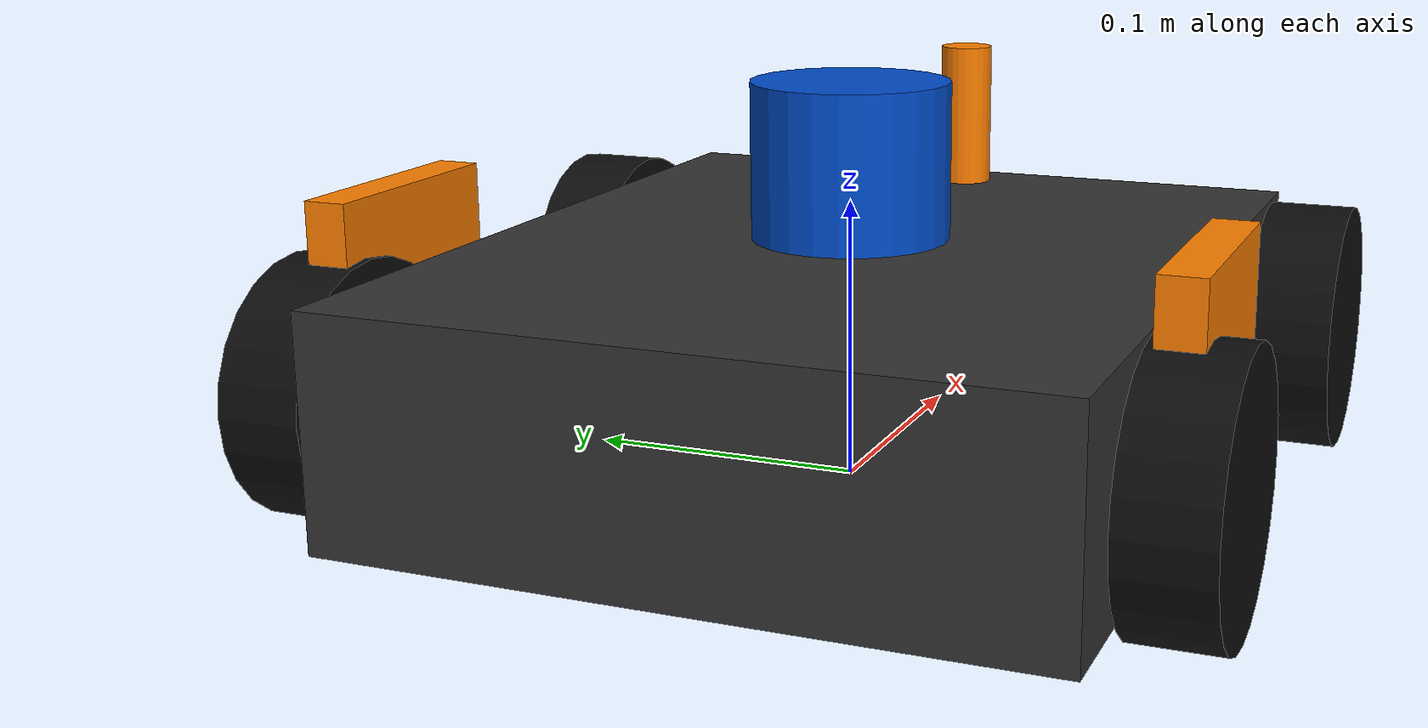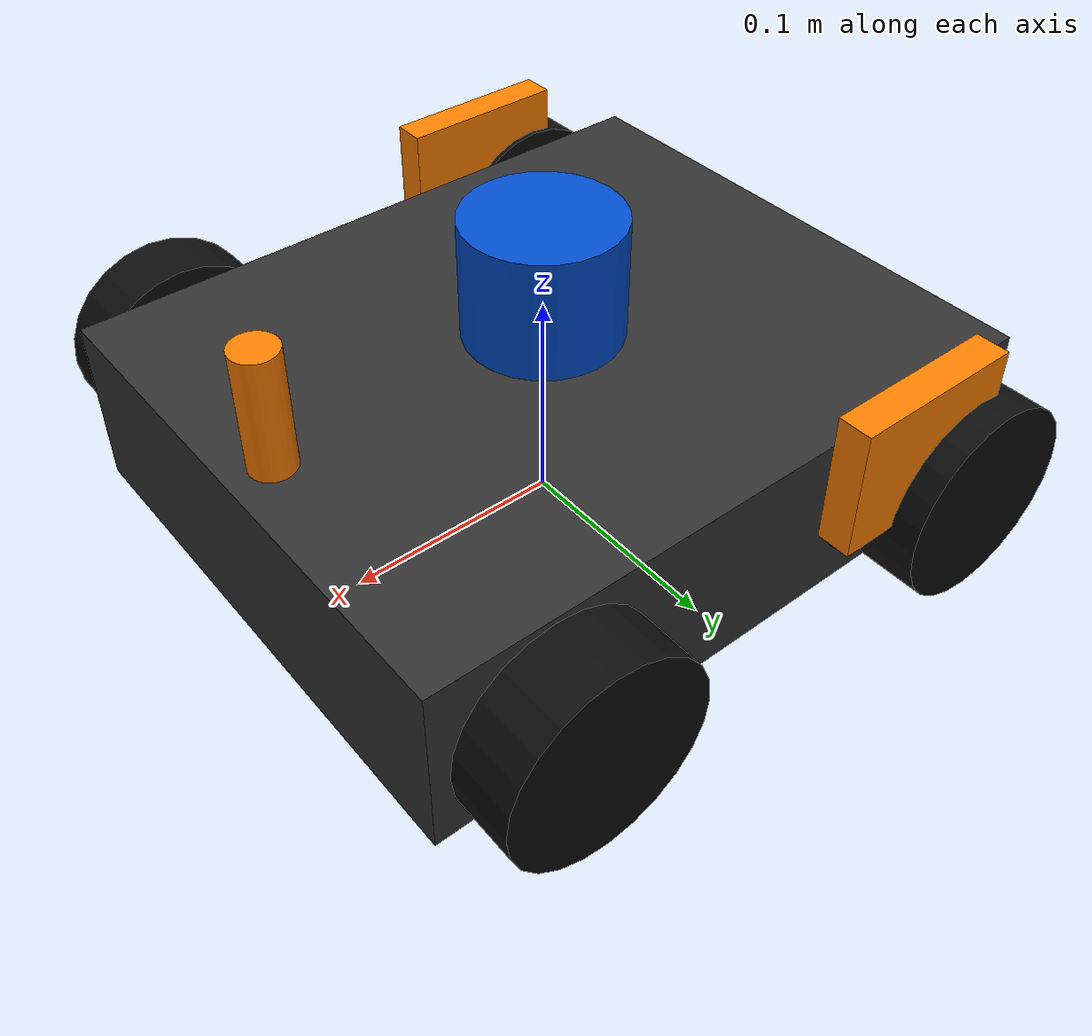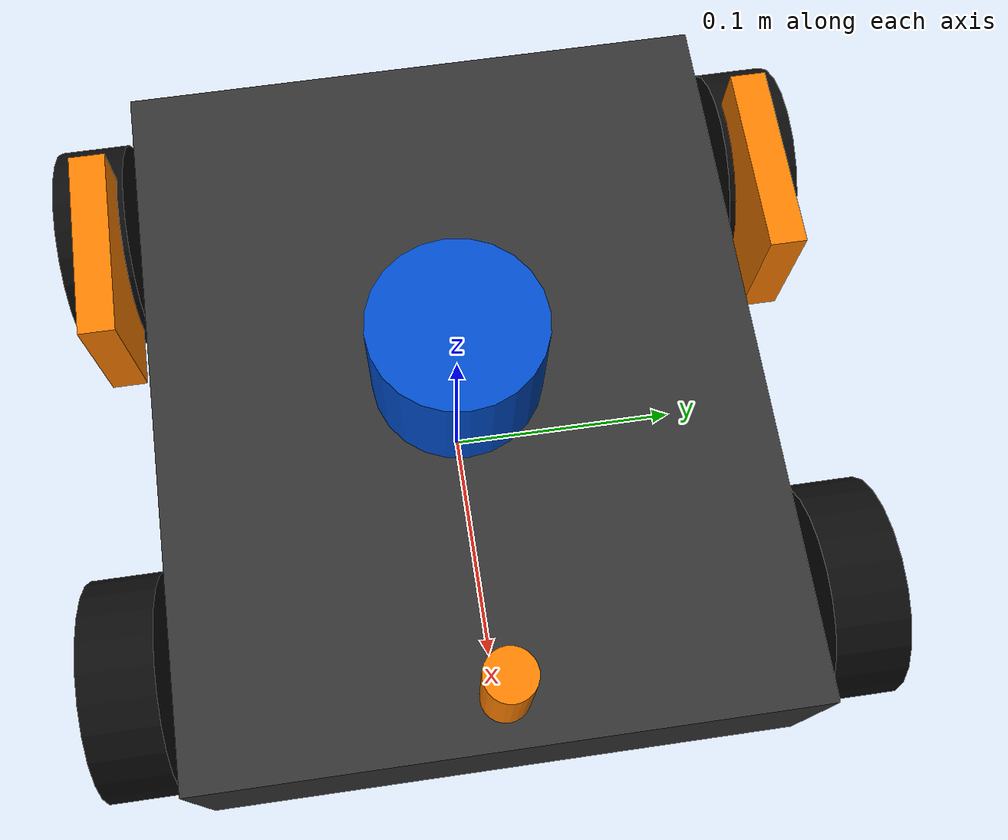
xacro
<?xml version="1.0"?>
<robot xmlns:xacro="http://www.ros.org/wiki/xacro" name="competition_robot">

  <!-- ══════════════════════════════════════════════════════════════════
       Parameters — tune to match your 3D-printed chassis
  ══════════════════════════════════════════════════════════════════ -->
  <xacro:property name="base_length"       value="0.30"/>
  <xacro:property name="base_width"        value="0.25"/>
  <xacro:property name="base_height"       value="0.08"/>
  <xacro:property name="base_mass"         value="3.0"/>

  <xacro:property name="wheel_radius"      value="0.045"/>
  <xacro:property name="wheel_width"       value="0.03"/>
  <xacro:property name="wheel_mass"        value="0.2"/>
  <!-- longitudinal (x) and lateral (y) offset from base centre to wheel -->
  <xacro:property name="wheel_x_offset"    value="0.10"/>
  <xacro:property name="wheel_y_offset"    value="0.145"/>

  <!-- Servo arm link dimensions (3D-printed) -->
  <xacro:property name="paddle_length"     value="0.08"/>
  <xacro:property name="paddle_width"      value="0.015"/>
  <xacro:property name="paddle_height"     value="0.06"/>
  <xacro:property name="crank_length"      value="0.06"/>
  <xacro:property name="crank_radius"      value="0.01"/>

  <!-- ══════════════════════════════════════════════════════════════════
       Inertia helpers
  ══════════════════════════════════════════════════════════════════ -->
  <xacro:macro name="box_inertia" params="m w h d">
    <inertial>
      <mass value="${m}"/>
      <inertia
        ixx="${m*(h*h+d*d)/12}" ixy="0" ixz="0"
        iyy="${m*(w*w+d*d)/12}" iyz="0"
        izz="${m*(w*w+h*h)/12}"/>
    </inertial>
  </xacro:macro>

  <xacro:macro name="cylinder_inertia" params="m r l">
    <inertial>
      <mass value="${m}"/>
      <inertia
        ixx="${m*(3*r*r+l*l)/12}" ixy="0" ixz="0"
        iyy="${m*(3*r*r+l*l)/12}" iyz="0"
        izz="${m*r*r/2}"/>
    </inertial>
  </xacro:macro>

  <!-- ══════════════════════════════════════════════════════════════════
       Base
  ══════════════════════════════════════════════════════════════════ -->
  <link name="base_footprint"/>

  <joint name="base_footprint_joint" type="fixed">
    <parent link="base_footprint"/>
    <child  link="base_link"/>
    <origin xyz="0 0 ${wheel_radius}" rpy="0 0 0"/>
  </joint>

  <link name="base_link">
    <visual>
      <geometry><box size="${base_length} ${base_width} ${base_height}"/></geometry>
      <material name="dark_grey"><color rgba="0.2 0.2 0.2 1"/></material>
    </visual>
    <collision>
      <geometry><box size="${base_length} ${base_width} ${base_height}"/></geometry>
    </collision>
    <xacro:box_inertia m="${base_mass}" w="${base_width}" h="${base_height}" d="${base_length}"/>
  </link>

  <!-- ══════════════════════════════════════════════════════════════════
       Wheel macro  (name = fl | fr | rl | rr)
  ══════════════════════════════════════════════════════════════════ -->
  <xacro:macro name="wheel" params="name x_sign y_sign">
    <link name="${name}_wheel">
      <visual>
        <geometry><cylinder radius="${wheel_radius}" length="${wheel_width}"/></geometry>
        <material name="black"><color rgba="0.05 0.05 0.05 1"/></material>
      </visual>
      <collision>
        <geometry><cylinder radius="${wheel_radius}" length="${wheel_width}"/></geometry>
      </collision>
      <xacro:cylinder_inertia m="${wheel_mass}" r="${wheel_radius}" l="${wheel_width}"/>
    </link>

    <joint name="${name}_wheel_joint" type="continuous">
      <parent link="base_link"/>
      <child  link="${name}_wheel"/>
      <origin
        xyz="${x_sign * wheel_x_offset} ${y_sign * wheel_y_offset} 0"
        rpy="${-pi/2} 0 0"/>
      <axis xyz="0 0 1"/>
    </joint>
  </xacro:macro>

  <!-- 4 independent wheels -->
  <xacro:wheel name="fl" x_sign="1"  y_sign="1"/>
  <xacro:wheel name="fr" x_sign="1"  y_sign="-1"/>
  <xacro:wheel name="rl" x_sign="-1" y_sign="1"/>
  <xacro:wheel name="rr" x_sign="-1" y_sign="-1"/>

  <!-- ══════════════════════════════════════════════════════════════════
       LiDAR
  ══════════════════════════════════════════════════════════════════ -->
  <link name="lidar_link">
    <visual>
      <geometry><cylinder radius="0.035" length="0.055"/></geometry>
      <material name="blue"><color rgba="0.0 0.3 0.8 1"/></material>
    </visual>
    <collision>
      <geometry><cylinder radius="0.035" length="0.055"/></geometry>
    </collision>
    <inertial>
      <mass value="0.17"/>
      <inertia ixx="0.0001" ixy="0" ixz="0" iyy="0.0001" iyz="0" izz="0.0001"/>
    </inertial>
  </link>

  <joint name="lidar_joint" type="fixed">
    <parent link="base_link"/>
    <child  link="lidar_link"/>
    <!-- Mounted centred on top of chassis -->
    <origin xyz="0 0 ${base_height/2 + 0.03}" rpy="0 0 0"/>
  </joint>

  <!-- LiDAR Gazebo plugin -->
  <gazebo reference="lidar_link">
    <sensor name="lidar" type="ray">
      <always_on>true</always_on>
      <update_rate>10</update_rate>
      <visualize>true</visualize>
      <ray>
        <scan>
          <horizontal>
            <samples>360</samples>
            <resolution>1</resolution>
            <min_angle>-3.14159265</min_angle>
            <max_angle>3.14159265</max_angle>
          </horizontal>
        </scan>
        <range>
          <min>0.15</min>
          <max>8.0</max>
          <resolution>0.01</resolution>
        </range>
        <noise>
          <type>gaussian</type>
          <mean>0.0</mean>
          <stddev>0.01</stddev>
        </noise>
      </ray>
      <plugin name="lidar_plugin" filename="libgazebo_ros_ray_sensor.so">
        <ros>
          <remapping>~/out:=/scan</remapping>
        </ros>
        <output_type>sensor_msgs/LaserScan</output_type>
        <frame_name>lidar_link</frame_name>
      </plugin>
    </sensor>
  </gazebo>

  <!-- ══════════════════════════════════════════════════════════════════
       IMU
  ══════════════════════════════════════════════════════════════════ -->
  <link name="imu_link"/>
  <joint name="imu_joint" type="fixed">
    <parent link="base_link"/>
    <child  link="imu_link"/>
    <origin xyz="0 0 0" rpy="0 0 0"/>
  </joint>

  <gazebo reference="imu_link">
    <sensor name="imu_sensor" type="imu">
      <always_on>true</always_on>
      <update_rate>100</update_rate>
      <plugin name="imu_plugin" filename="libgazebo_ros_imu_sensor.so">
        <ros><remapping>~/out:=/imu/data</remapping></ros>
        <frame_name>imu_link</frame_name>
      </plugin>
    </sensor>
  </gazebo>

  <xacro:macro name="paddle" params="name y_sign">
    <!-- Servo body (fixed to chassis) -->
    <link name="${name}_servo_body">
      <visual>
        <geometry><box size="0.023 0.012 0.028"/></geometry>
        <material name="servo_grey"><color rgba="0.3 0.3 0.3 1"/></material>
      </visual>
    </link>
    <joint name="${name}_servo_body_joint" type="fixed">
      <parent link="base_link"/>
      <child  link="${name}_servo_body"/>
      <origin xyz="${-base_length/2 + 0.04} ${y_sign * (base_width/2 + 0.015)} ${base_height/4}" rpy="0 0 0"/>
    </joint>

    <!-- Paddle arm (revolute — rotates around Z) -->
    <link name="${name}_paddle">
      <visual>
        <origin xyz="${paddle_length/2} 0 0" rpy="0 0 0"/>
        <geometry><box size="${paddle_length} ${paddle_width} ${paddle_height}"/></geometry>
        <material name="orange"><color rgba="1.0 0.5 0.0 1"/></material>
      </visual>
      <collision>
        <origin xyz="${paddle_length/2} 0 0" rpy="0 0 0"/>
        <geometry><box size="${paddle_length} ${paddle_width} ${paddle_height}"/></geometry>
      </collision>
      <inertial>
        <mass value="0.03"/>
        <inertia ixx="0.00001" ixy="0" ixz="0" iyy="0.00001" iyz="0" izz="0.00001"/>
      </inertial>
    </link>
    <joint name="${name}_paddle_joint" type="revolute">
      <parent link="${name}_servo_body"/>
      <child  link="${name}_paddle"/>
      <origin xyz="0 0 0.015" rpy="0 0 0"/>
      <axis xyz="0 0 1"/>
      <limit lower="-1.5708" upper="1.5708" effort="0.5" velocity="3.0"/>
    </joint>
  </xacro:macro>

  <xacro:paddle name="left_paddle"  y_sign="1"/>
  <xacro:paddle name="right_paddle" y_sign="-1"/>

  <!-- ══════════════════════════════════════════════════════════════════
       Crank servo effector  (front-centre, mounted forward)
  ══════════════════════════════════════════════════════════════════ -->
  <link name="crank_servo_body">
    <visual>
      <geometry><box size="0.023 0.012 0.028"/></geometry>
      <material name="servo_grey"><color rgba="0.3 0.3 0.3 1"/></material>
    </visual>
  </link>
  <joint name="crank_servo_body_joint" type="fixed">
    <parent link="base_link"/>
    <child  link="crank_servo_body"/>
    <origin xyz="${base_length/2 - 0.02} 0 ${base_height/4}" rpy="0 0 0"/>
  </joint>

  <link name="crank_arm">
    <visual>
      <origin xyz="0 0 ${crank_length/2}" rpy="0 0 0"/>
      <geometry><cylinder radius="${crank_radius}" length="${crank_length}"/></geometry>
      <material name="orange"><color rgba="1.0 0.5 0.0 1"/></material>
    </visual>
    <collision>
      <origin xyz="0 0 ${crank_length/2}" rpy="0 0 0"/>
      <geometry><cylinder radius="${crank_radius}" length="${crank_length}"/></geometry>
    </collision>
    <inertial>
      <mass value="0.02"/>
      <inertia ixx="0.000005" ixy="0" ixz="0" iyy="0.000005" iyz="0" izz="0.000005"/>
    </inertial>
  </link>
  <joint name="crank_joint" type="revolute">
    <parent link="crank_servo_body"/>
    <child  link="crank_arm"/>
    <origin xyz="0 0 0.015" rpy="0 0 0"/>
    <axis xyz="1 0 0"/>
    <limit lower="0" upper="3.14159" effort="0.5" velocity="3.0"/>
  </joint>

  <!-- ══════════════════════════════════════════════════════════════════
       Gazebo — skid-steer drive plugin (4-wheel)
  ══════════════════════════════════════════════════════════════════ -->
  <gazebo>
    <plugin name="skid_steer_drive" filename="libgazebo_ros_diff_drive.so">
      <!-- Skid steer: treat left pair and right pair as two virtual axles -->
      <left_joint>fl_wheel_joint</left_joint>
      <right_joint>fr_wheel_joint</right_joint>
      <wheel_separation>${wheel_y_offset * 2}</wheel_separation>
      <wheel_diameter>${2 * wheel_radius}</wheel_diameter>
      <max_wheel_torque>10</max_wheel_torque>
      <max_wheel_acceleration>2.0</max_wheel_acceleration>
      <command_topic>cmd_vel</command_topic>
      <publish_odom>true</publish_odom>
      <publish_odom_tf>true</publish_odom_tf>
      <odometry_topic>odom</odometry_topic>
      <odometry_frame>odom</odometry_frame>
      <robot_base_frame>base_footprint</robot_base_frame>
    </plugin>
  </gazebo>

  <!-- Rear wheel friction (skid steer passive) -->
  <gazebo reference="rl_wheel">
    <mu1>0.5</mu1><mu2>0.5</mu2>
  </gazebo>
  <gazebo reference="rr_wheel">
    <mu1>0.5</mu1><mu2>0.5</mu2>
  </gazebo>

</robot>
